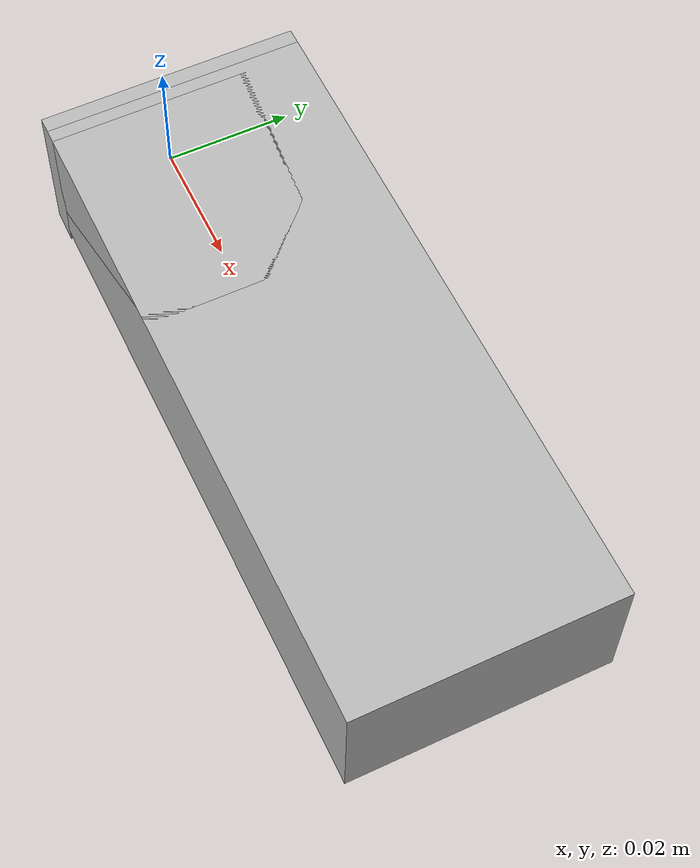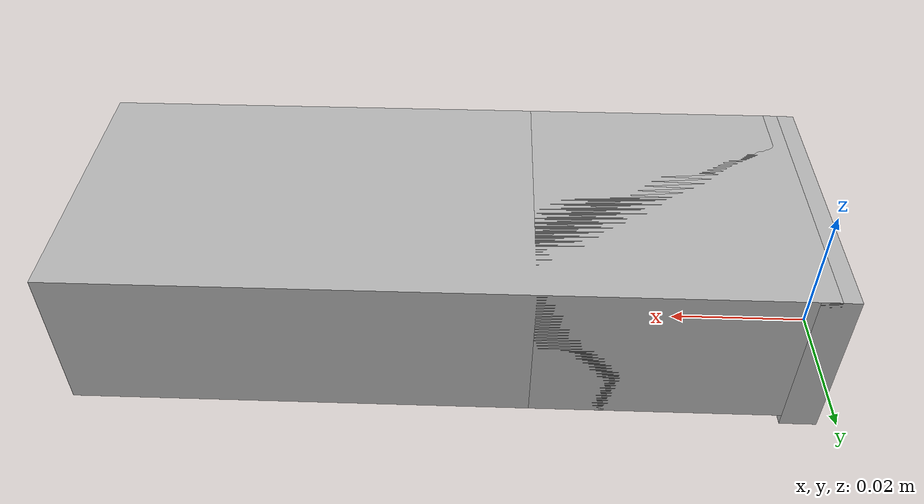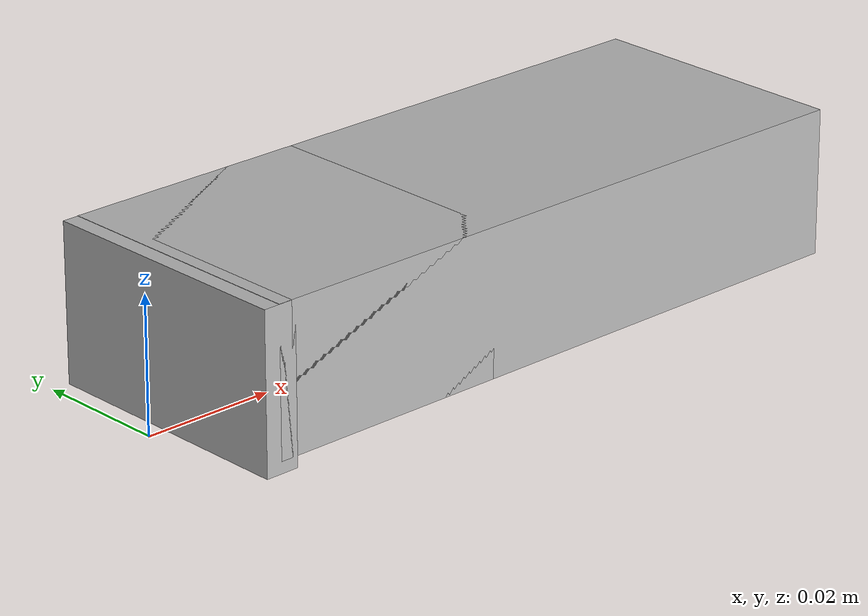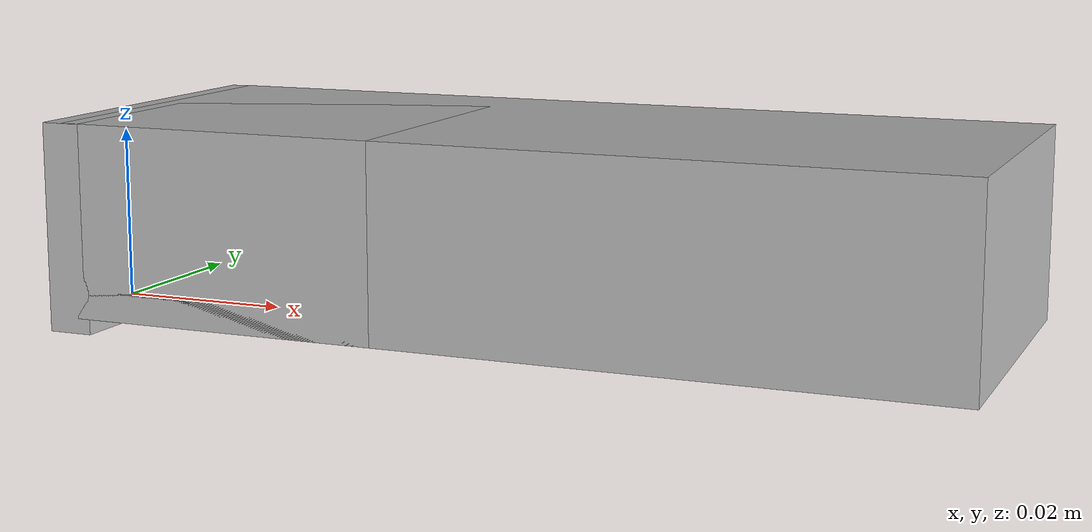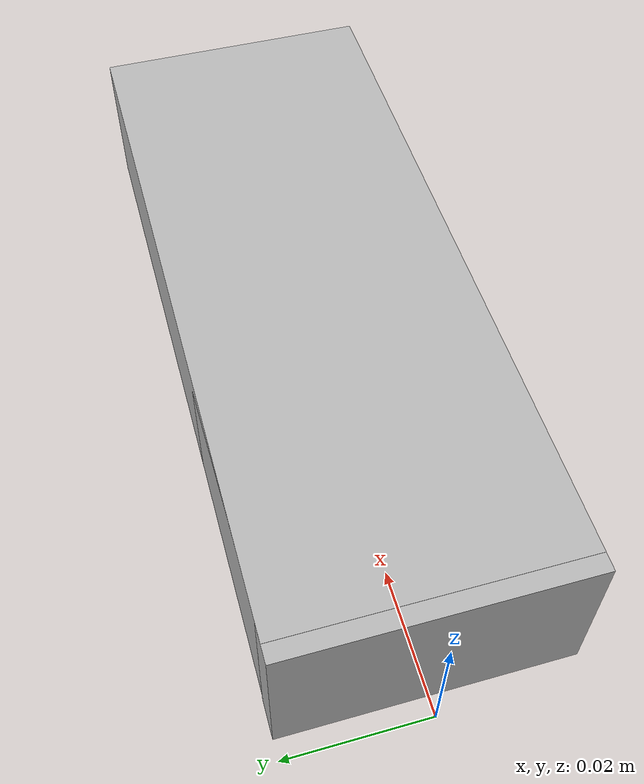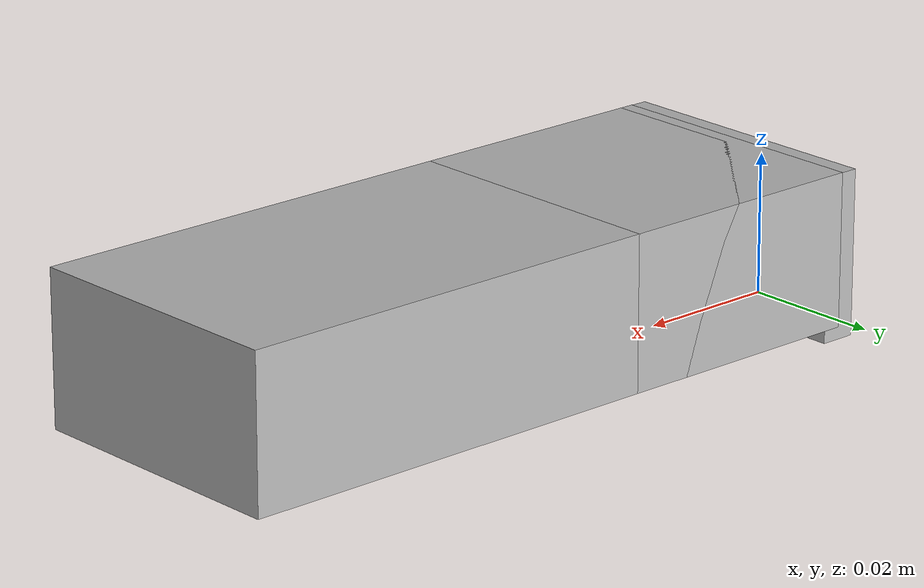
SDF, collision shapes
<?xml version="1.0" ?>
<sdf version="1.6">
  <model name="t_brace_part">
    <link name="link">
      <inertial>
        <pose>0.0551975 0 0.0116575 0 0 0</pose>
        <mass>0.125</mass>
        <inertia>
          <ixx>0.00698181016</ixx>
          <ixy>0</ixy>
          <ixz>0</ixz>
          <iyy>0.00703472735</iyy>
          <iyz>0</iyz>
          <izz>0.01329175188</izz>
        </inertia>
      </inertial>

      <collision name="collision1">
        <pose>0.0052875 0 0.0116575 0 0 0</pose>
        <geometry>
          <box>
            <size>0.005095 0.04000 0.023315</size>
          </box>
        </geometry>
      </collision>

      <collision name="collision2">
        <pose>0.0551975 0 0.0125325 0 0 0</pose>
        <geometry>
          <box>
            <size>0.1000425 0.04000 0.02165</size>
          </box>
        </geometry>
      </collision>

      <collision name="collision3">
        <pose>0.0247375 0 0.0125325 0 0 0</pose>
        <geometry>
          <box>
            <size>0.0349925 0.04000 0.02165</size>
          </box>
        </geometry>
      </collision>

      <visual name="visual">
         <geometry>
           <mesh>
             <uri>model://t_brace_part/meshes/t_brace.dae</uri>
             <scale>0.25 0.25 0.25</scale>
           </mesh>
         </geometry>
        <material>
          <script>
            <uri>model://arm_part/materials/scripts</uri>
            <uri>model://arm_part/materials/textures</uri>
            <name>ArmPart/Diffuse</name>
          </script>
        </material>
       </visual>
    </link>
  </model>
</sdf>
